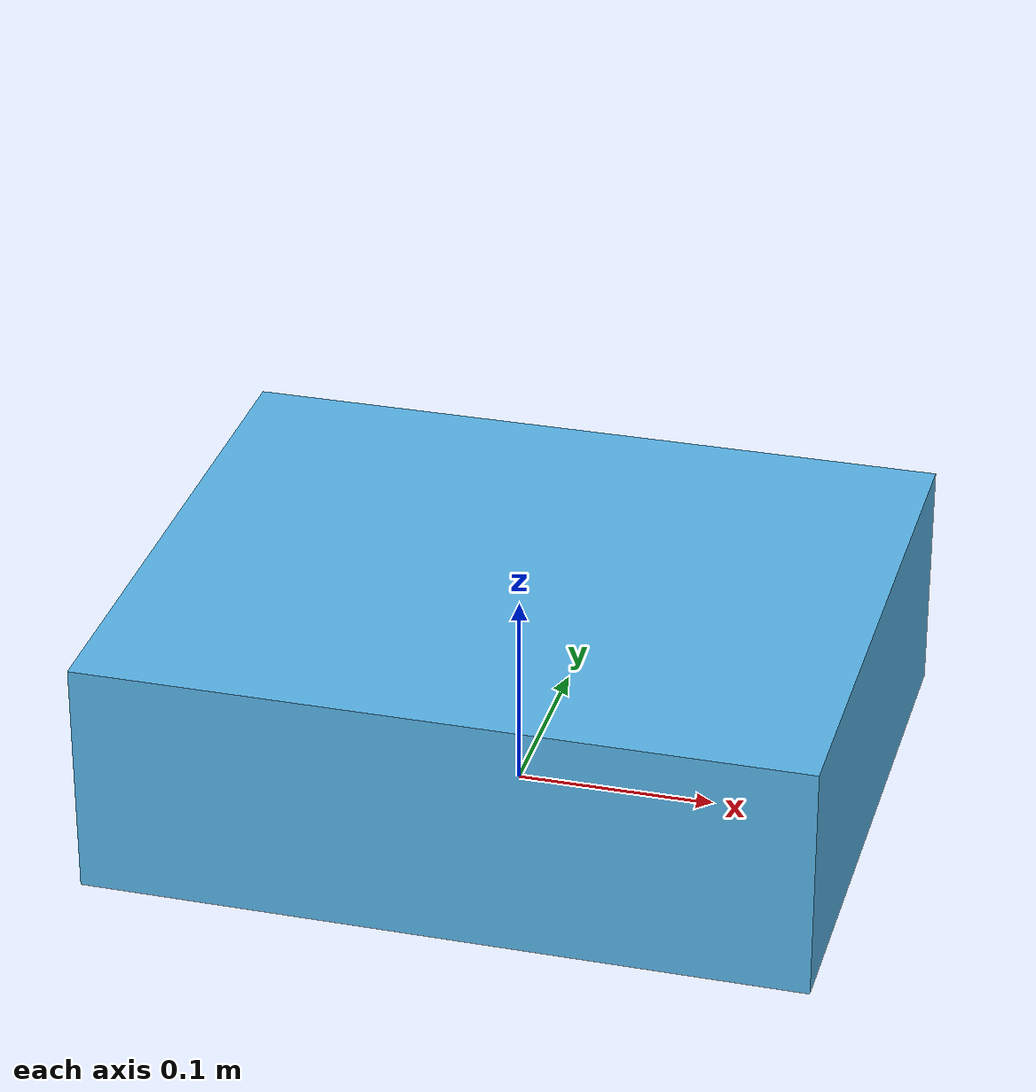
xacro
<?xml version="1.0"?>
<robot xmlns:xacro="http://www.ros.org/wiki/xacro" name="yahboom_ppe_calibration">
  <!-- Calibration template only. Measure the assembled robot and prefer the vendor URDF when available. -->
  <xacro:arg name="base_length" default="0.36"/>
  <xacro:arg name="base_width" default="0.30"/>
  <xacro:arg name="laser_x" default="0.0"/>
  <xacro:arg name="laser_z" default="0.22"/>
  <link name="base_footprint"/>
  <link name="base_link">
    <visual><geometry><box size="$(arg base_length) $(arg base_width) 0.12"/></geometry></visual>
    <collision><geometry><box size="$(arg base_length) $(arg base_width) 0.12"/></geometry></collision>
  </link>
  <joint name="base_footprint_to_base_link" type="fixed">
    <parent link="base_footprint"/><child link="base_link"/><origin xyz="0 0 0.06" rpy="0 0 0"/>
  </joint>
  <link name="laser_frame"/>
  <joint name="base_to_laser" type="fixed">
    <parent link="base_link"/><child link="laser_frame"/>
    <origin xyz="$(arg laser_x) 0 $(arg laser_z)" rpy="0 0 0"/>
  </joint>
  <link name="camera_link"/>
  <joint name="base_to_camera" type="fixed">
    <parent link="base_link"/><child link="camera_link"/><origin xyz="0.10 0 0.24" rpy="0 0 0"/>
  </joint>
</robot>
